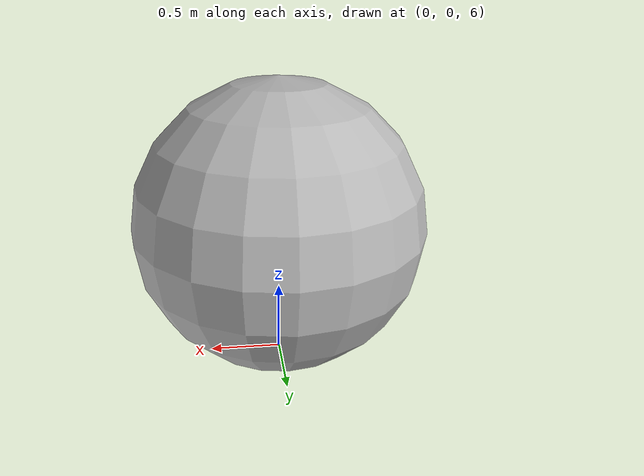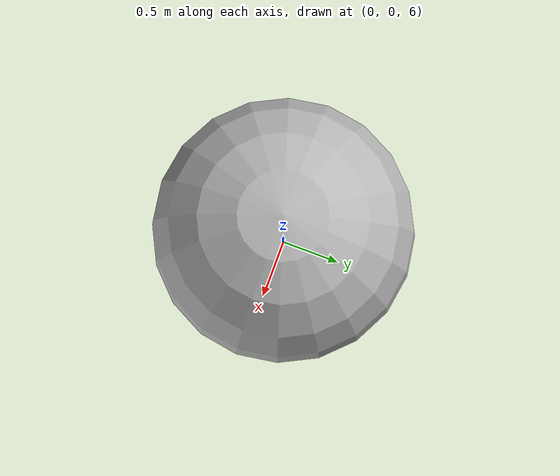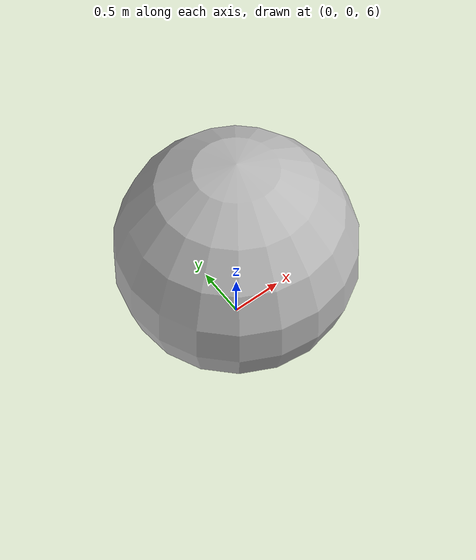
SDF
<!--
  Rcorded using ign-gazebo 1.1.0, adding a LogRecorder and SceneBroadcaster to falling.sdf and running:

    ign-gazebo-server -v 4 -f test/worlds/falling.sdf --iterations 2000 -r
-->
<sdf version='1.6'>
  <world name='default'>
    <plugin name='ignition::gazebo::systems::Physics' filename='libignition-gazebo-physics-system.so'/>
    <plugin name='ignition::gazebo::systems::SceneBroadcaster' filename='libignition-gazebo-scene-broadcaster-system.so'/>
    <plugin name='ignition::gazebo::systems::LogRecord' filename='libignition-gazebo-log-system.so'>
      <path>/tmp/log</path>
    </plugin>
    <light name='sun' type='directional'>
      <cast_shadows>1</cast_shadows>
      <pose frame=''>0 0 10 0 -0 0</pose>
      <diffuse>0.8 0.8 0.8 1</diffuse>
      <specular>0.2 0.2 0.2 1</specular>
      <attenuation>
        <range>1000</range>
        <constant>0.9</constant>
        <linear>0.01</linear>
        <quadratic>0.001</quadratic>
      </attenuation>
      <direction>-0.5 0.1 -0.9</direction>
      <spot>
        <inner_angle>0</inner_angle>
        <outer_angle>0</outer_angle>
        <falloff>0</falloff>
      </spot>
    </light>
    <model name='sphere'>
      <pose frame=''>0 0 2 0 -0 0</pose>
      <link name='sphere_link'>
        <pose frame=''>0 0 5 0 -0 0</pose>
        <inertial>
          <inertia>
            <ixx>0.4</ixx>
            <ixy>0</ixy>
            <ixz>0</ixz>
            <iyy>0.4</iyy>
            <iyz>0</iyz>
            <izz>0.4</izz>
          </inertia>
          <mass>1</mass>
        </inertial>
        <visual name='sphere_visual'>
          <pose frame=''>0 0 0 0 -0 0</pose>
          <geometry>
            <sphere>
              <radius>1</radius>
            </sphere>
          </geometry>
        </visual>
        <collision name='sphere_collision'>
          <pose frame=''>0 0 0 0 -0 0</pose>
          <geometry>
            <sphere>
              <radius>1</radius>
            </sphere>
          </geometry>
        </collision>
      </link>
    </model>
    <model name='plane'>
      <static>1</static>
      <pose frame=''>0 0 0 0 -0 0</pose>
      <link name='plane_link'>
        <collision name='collision'>
          <geometry>
            <plane>
              <normal>0 0 1</normal>
              <size>1 1</size>
            </plane>
          </geometry>
        </collision>
        <visual name='visual'>
          <geometry>
            <plane>
              <normal>0 0 1</normal>
              <size>100 100</size>
            </plane>
          </geometry>
        </visual>
      </link>
    </model>
    <gravity>0 0 -9.8</gravity>
    <magnetic_field>6e-06 2.3e-05 -4.2e-05</magnetic_field>
    <atmosphere type='adiabatic'/>
    <physics name='default_physics' default='0' type='ode'>
      <max_step_size>0.001</max_step_size>
      <real_time_factor>1</real_time_factor>
      <real_time_update_rate>1000</real_time_update_rate>
    </physics>
    <scene>
      <ambient>0.4 0.4 0.4 1</ambient>
      <background>0.7 0.7 0.7 1</background>
      <shadows>1</shadows>
    </scene>
  </world>
</sdf>
